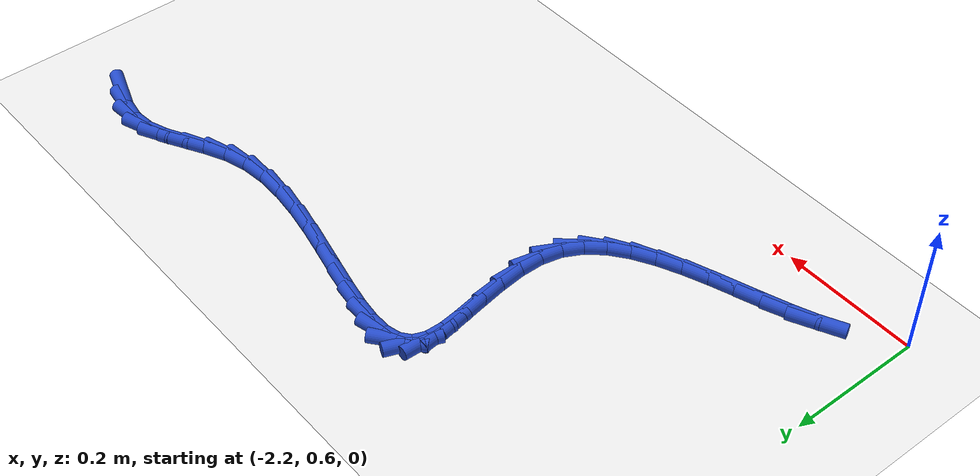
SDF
<sdf version="1.6">
 <world name="default">
  <model name="ground_plane">
   <static>1</static>
   <link name="link">
    <collision name="collision">
     <geometry><plane><normal>0 0 1</normal><size>100 100</size></plane></geometry>
     <surface><friction><ode><mu>100</mu><mu2>50</mu2></ode></friction></surface>
    </collision>
    <visual name="visual">
     <cast_shadows>0</cast_shadows>
     <geometry><plane><normal>0 0 1</normal><size>100 100</size></plane></geometry>
     <material>
      <script><uri>file://media/materials/scripts/gazebo.material</uri><name>Gazebo/WhiteGlow</name></script>
     </material>
    </visual>
   </link>
  </model>
  <model name="line">
   <link name="link_60">
    <pose>-1.1661612133072312 1.1050221997627931 0.01 0 1.57 -0.3402627890461633</pose>
    <collision name="collision">
     <geometry><cylinder><radius>0.01</radius><length>0.08</length></cylinder></geometry>
    </collision>
    <visual name="visual">
     <material>
      <script><name>Gazebo/Blue</name><uri>file://media/materials/scripts/gazebo.material</uri></script>
     </material>
     <geometry><cylinder><radius>0.01</radius><length>0.08</length></cylinder></geometry>
    </visual>
   </link>
   <link name="link_61">
    <pose>-1.197531414126988 1.1161282728099007 0.01 0 1.57 -0.15765836590429164</pose>
    <collision name="collision">
     <geometry><cylinder><radius>0.01</radius><length>0.08</length></cylinder></geometry>
    </collision>
    <visual name="visual">
     <material>
      <script><name>Gazebo/Blue</name><uri>file://media/materials/scripts/gazebo.material</uri></script>
     </material>
     <geometry><cylinder><radius>0.01</radius><length>0.08</length></cylinder></geometry>
    </visual>
   </link>
   <link name="link_62">
    <pose>-1.2279665543143623 1.1209667827926577 0.01 0 1.57 0.10263413177115663</pose>
    <collision name="collision">
     <geometry><cylinder><radius>0.01</radius><length>0.08</length></cylinder></geometry>
    </collision>
    <visual name="visual">
     <material>
      <script><name>Gazebo/Blue</name><uri>file://media/materials/scripts/gazebo.material</uri></script>
     </material>
     <geometry><cylinder><radius>0.01</radius><length>0.08</length></cylinder></geometry>
    </visual>
   </link>
   <link name="link_63">
    <pose>-1.2571983899645414 1.117956019732429 0.01 0 1.57 0.35035542812867</pose>
    <collision name="collision">
     <geometry><cylinder><radius>0.01</radius><length>0.08</length></cylinder></geometry>
    </collision>
    <visual name="visual">
     <material>
      <script><name>Gazebo/Blue</name><uri>file://media/materials/scripts/gazebo.material</uri></script>
     </material>
     <geometry><cylinder><radius>0.01</radius><length>0.08</length></cylinder></geometry>
    </visual>
   </link>
   <link name="link_64">
    <pose>-1.285509394476977 1.1076102915710802 0.01 0 1.57 0.48161283132658783</pose>
    <collision name="collision">
     <geometry><cylinder><radius>0.01</radius><length>0.08</length></cylinder></geometry>
    </collision>
    <visual name="visual">
     <material>
      <script><name>Gazebo/Blue</name><uri>file://media/materials/scripts/gazebo.material</uri></script>
     </material>
     <geometry><cylinder><radius>0.01</radius><length>0.08</length></cylinder></geometry>
    </visual>
   </link>
   <link name="link_65">
    <pose>-1.3138064704727535 1.092820470103618 0.01 0 1.57 0.506559227448487</pose>
    <collision name="collision">
     <geometry><cylinder><radius>0.01</radius><length>0.08</length></cylinder></geometry>
    </collision>
    <visual name="visual">
     <material>
      <script><name>Gazebo/Blue</name><uri>file://media/materials/scripts/gazebo.material</uri></script>
     </material>
     <geometry><cylinder><radius>0.01</radius><length>0.08</length></cylinder></geometry>
    </visual>
   </link>
   <link name="link_66">
    <pose>-1.3430302165420716 1.0766056732407399 0.01 0 1.57 0.43956839144852444</pose>
    <collision name="collision">
     <geometry><cylinder><radius>0.01</radius><length>0.08</length></cylinder></geometry>
    </collision>
    <visual name="visual">
     <material>
      <script><name>Gazebo/Blue</name><uri>file://media/materials/scripts/gazebo.material</uri></script>
     </material>
     <geometry><cylinder><radius>0.01</radius><length>0.08</length></cylinder></geometry>
    </visual>
   </link>
   <link name="link_67">
    <pose>-1.3741212312751294 1.061985018893143 0.01 0 1.57 0.28851569758027024</pose>
    <collision name="collision">
     <geometry><cylinder><radius>0.01</radius><length>0.08</length></cylinder></geometry>
    </collision>
    <visual name="visual">
     <material>
      <script><name>Gazebo/Blue</name><uri>file://media/materials/scripts/gazebo.material</uri></script>
     </material>
     <geometry><cylinder><radius>0.01</radius><length>0.08</length></cylinder></geometry>
    </visual>
   </link>
   <link name="link_68">
    <pose>-1.4079995198568007 1.0519300437578145 0.01 0 1.57 0.1149981122758367</pose>
    <collision name="collision">
     <geometry><cylinder><radius>0.01</radius><length>0.08</length></cylinder></geometry>
    </collision>
    <visual name="visual">
     <material>
      <script><name>Gazebo/Blue</name><uri>file://media/materials/scripts/gazebo.material</uri></script>
     </material>
     <geometry><cylinder><radius>0.01</radius><length>0.08</length></cylinder></geometry>
    </visual>
   </link>
   <link name="link_69">
    <pose>-1.4448333753994742 1.047675448287256 0.01 0 1.57 -0.015059358832556541</pose>
    <collision name="collision">
     <geometry><cylinder><radius>0.01</radius><length>0.08</length></cylinder></geometry>
    </collision>
    <visual name="visual">
     <material>
      <script><name>Gazebo/Blue</name><uri>file://media/materials/scripts/gazebo.material</uri></script>
     </material>
     <geometry><cylinder><radius>0.01</radius><length>0.08</length></cylinder></geometry>
    </visual>
   </link>
   <link name="link_70">
    <pose>-1.4838419505008476 1.0482629368289826 0.01 0 1.57 -0.1069459673614197</pose>
    <collision name="collision">
     <geometry><cylinder><radius>0.01</radius><length>0.08</length></cylinder></geometry>
    </collision>
    <visual name="visual">
     <material>
      <script><name>Gazebo/Blue</name><uri>file://media/materials/scripts/gazebo.material</uri></script>
     </material>
     <geometry><cylinder><radius>0.01</radius><length>0.08</length></cylinder></geometry>
    </visual>
   </link>
   <link name="link_71">
    <pose>-1.5241836442872767 1.0525938423903864 0.01 0 1.57 -0.16919954219452152</pose>
    <collision name="collision">
     <geometry><cylinder><radius>0.01</radius><length>0.08</length></cylinder></geometry>
    </collision>
    <visual name="visual">
     <material>
      <script><name>Gazebo/Blue</name><uri>file://media/materials/scripts/gazebo.material</uri></script>
     </material>
     <geometry><cylinder><radius>0.01</radius><length>0.08</length></cylinder></geometry>
    </visual>
   </link>
   <link name="link_72">
    <pose>-1.5650168558851192 1.0595694979788597 0.01 0 1.57 -0.20747197507004378</pose>
    <collision name="collision">
     <geometry><cylinder><radius>0.01</radius><length>0.08</length></cylinder></geometry>
    </collision>
    <visual name="visual">
     <material>
      <script><name>Gazebo/Blue</name><uri>file://media/materials/scripts/gazebo.material</uri></script>
     </material>
     <geometry><cylinder><radius>0.01</radius><length>0.08</length></cylinder></geometry>
    </visual>
   </link>
   <link name="link_73">
    <pose>-1.6054999844207316 1.0680912366017934 0.01 0 1.57 -0.22442702422163446</pose>
    <collision name="collision">
     <geometry><cylinder><radius>0.01</radius><length>0.08</length></cylinder></geometry>
    </collision>
    <visual name="visual">
     <material>
      <script><name>Gazebo/Blue</name><uri>file://media/materials/scripts/gazebo.material</uri></script>
     </material>
     <geometry><cylinder><radius>0.01</radius><length>0.08</length></cylinder></geometry>
    </visual>
   </link>
   <link name="link_74">
    <pose>-1.6447914290204715 1.0770603912665795 0.01 0 1.57 -0.21964864377895948</pose>
    <collision name="collision">
     <geometry><cylinder><radius>0.01</radius><length>0.08</length></cylinder></geometry>
    </collision>
    <visual name="visual">
     <material>
      <script><name>Gazebo/Blue</name><uri>file://media/materials/scripts/gazebo.material</uri></script>
     </material>
     <geometry><cylinder><radius>0.01</radius><length>0.08</length></cylinder></geometry>
    </visual>
   </link>
   <link name="link_75">
    <pose>-1.6820495888106946 1.0853782949806097 0.01 0 1.57 -0.188748825636155</pose>
    <collision name="collision">
     <geometry><cylinder><radius>0.01</radius><length>0.08</length></cylinder></geometry>
    </collision>
    <visual name="visual">
     <material>
      <script><name>Gazebo/Blue</name><uri>file://media/materials/scripts/gazebo.material</uri></script>
     </material>
     <geometry><cylinder><radius>0.01</radius><length>0.08</length></cylinder></geometry>
    </visual>
   </link>
   <link name="link_76">
    <pose>-1.7164328629177577 1.0919462807512754 0.01 0 1.57 -0.1206948329132145</pose>
    <collision name="collision">
     <geometry><cylinder><radius>0.01</radius><length>0.08</length></cylinder></geometry>
    </collision>
    <visual name="visual">
     <material>
      <script><name>Gazebo/Blue</name><uri>file://media/materials/scripts/gazebo.material</uri></script>
     </material>
     <geometry><cylinder><radius>0.01</radius><length>0.08</length></cylinder></geometry>
    </visual>
   </link>
   <link name="link_77">
    <pose>-1.7470996504680192 1.0956656815859689 0.01 0 1.57 0.00872679638063249</pose>
    <collision name="collision">
     <geometry><cylinder><radius>0.01</radius><length>0.08</length></cylinder></geometry>
    </collision>
    <visual name="visual">
     <material>
      <script><name>Gazebo/Blue</name><uri>file://media/materials/scripts/gazebo.material</uri></script>
     </material>
     <geometry><cylinder><radius>0.01</radius><length>0.08</length></cylinder></geometry>
    </visual>
   </link>
   <link name="link_78">
    <pose>-1.7732083505878338 1.0954378304920809 0.01 0 1.57 0.24936030623793817</pose>
    <collision name="collision">
     <geometry><cylinder><radius>0.01</radius><length>0.08</length></cylinder></geometry>
    </collision>
    <visual name="visual">
     <material>
      <script><name>Gazebo/Blue</name><uri>file://media/materials/scripts/gazebo.material</uri></script>
     </material>
     <geometry><cylinder><radius>0.01</radius><length>0.08</length></cylinder></geometry>
    </visual>
   </link>
   <link name="link_79">
    <pose>-1.7939173624035605 1.0901640604770044 0.01 0 1.57 0.6681390767789892</pose>
    <collision name="collision">
     <geometry><cylinder><radius>0.01</radius><length>0.08</length></cylinder></geometry>
    </collision>
    <visual name="visual">
     <material>
      <script><name>Gazebo/Blue</name><uri>file://media/materials/scripts/gazebo.material</uri></script>
     </material>
     <geometry><cylinder><radius>0.01</radius><length>0.08</length></cylinder></geometry>
    </visual>
   </link>
   <link name="link_80">
    <pose>-1.808385085041555 1.0787457045481303 0.01 0 1.57 1.1915108120711917</pose>
    <collision name="collision">
     <geometry><cylinder><radius>0.01</radius><length>0.08</length></cylinder></geometry>
    </collision>
    <visual name="visual">
     <material>
      <script><name>Gazebo/Blue</name><uri>file://media/materials/scripts/gazebo.material</uri></script>
     </material>
     <geometry><cylinder><radius>0.01</radius><length>0.08</length></cylinder></geometry>
    </visual>
   </link>
   <link name="link_81">
    <pose>-1.815808707168012 1.0601207396804573 0.01 0 1.57 1.5363126488230165</pose>
    <collision name="collision">
     <geometry><cylinder><radius>0.01</radius><length>0.08</length></cylinder></geometry>
    </collision>
    <visual name="visual">
     <material>
      <script><name>Gazebo/Blue</name><uri>file://media/materials/scripts/gazebo.material</uri></script>
     </material>
     <geometry><cylinder><radius>0.01</radius><length>0.08</length></cylinder></geometry>
    </visual>
   </link>
   <link name="link_82">
    <pose>-1.8166938251167422 1.034463178346942 0.01 0 1.57 -1.4566506864139475</pose>
    <collision name="collision">
     <geometry><cylinder><radius>0.01</radius><length>0.08</length></cylinder></geometry>
    </collision>
    <visual name="visual">
     <material>
      <script><name>Gazebo/Blue</name><uri>file://media/materials/scripts/gazebo.material</uri></script>
     </material>
     <geometry><cylinder><radius>0.01</radius><length>0.08</length></cylinder></geometry>
    </visual>
   </link>
   <link name="link_83">
    <pose>-1.8131385145156196 1.0034514272441006 0.01 0 1.57 -1.4046557177342809</pose>
    <collision name="collision">
     <geometry><cylinder><radius>0.01</radius><length>0.08</length></cylinder></geometry>
    </collision>
    <visual name="visual">
     <material>
      <script><name>Gazebo/Blue</name><uri>file://media/materials/scripts/gazebo.material</uri></script>
     </material>
     <geometry><cylinder><radius>0.01</radius><length>0.08</length></cylinder></geometry>
    </visual>
   </link>
   <link name="link_84">
    <pose>-1.8073371432951784 0.9688548591390522 0.01 0 1.57 -1.411414343905852</pose>
    <collision name="collision">
     <geometry><cylinder><radius>0.01</radius><length>0.08</length></cylinder></geometry>
    </collision>
    <visual name="visual">
     <material>
      <script><name>Gazebo/Blue</name><uri>file://media/materials/scripts/gazebo.material</uri></script>
     </material>
     <geometry><cylinder><radius>0.01</radius><length>0.08</length></cylinder></geometry>
    </visual>
   </link>
   <link name="link_85">
    <pose>-1.801484079385951 0.9324428467989141 0.01 0 1.57 -1.4693741646954077</pose>
    <collision name="collision">
     <geometry><cylinder><radius>0.01</radius><length>0.08</length></cylinder></geometry>
    </collision>
    <visual name="visual">
     <material>
      <script><name>Gazebo/Blue</name><uri>file://media/materials/scripts/gazebo.material</uri></script>
     </material>
     <geometry><cylinder><radius>0.01</radius><length>0.08</length></cylinder></geometry>
    </visual>
   </link>
   <link name="link_86">
    <pose>-1.7977736907184731 0.8959847629908058 0.01 0 1.57 1.552757160157416</pose>
    <collision name="collision">
     <geometry><cylinder><radius>0.01</radius><length>0.08</length></cylinder></geometry>
    </collision>
    <visual name="visual">
     <material>
      <script><name>Gazebo/Blue</name><uri>file://media/materials/scripts/gazebo.material</uri></script>
     </material>
     <geometry><cylinder><radius>0.01</radius><length>0.08</length></cylinder></geometry>
    </visual>
   </link>
   <link name="link_87">
    <pose>-1.798400345223278 0.8612499804818452 0.01 0 1.57 1.3465627687297979</pose>
    <collision name="collision">
     <geometry><cylinder><radius>0.01</radius><length>0.08</length></cylinder></geometry>
    </collision>
    <visual name="visual">
     <material>
      <script><name>Gazebo/Blue</name><uri>file://media/materials/scripts/gazebo.material</uri></script>
     </material>
     <geometry><cylinder><radius>0.01</radius><length>0.08</length></cylinder></geometry>
    </visual>
   </link>
   <link name="link_88">
    <pose>-1.8055302290130575 0.8299880102878057 0.01 0 1.57 1.077619597262096</pose>
    <collision name="collision">
     <geometry><cylinder><radius>0.01</radius><length>0.08</length></cylinder></geometry>
    </collision>
    <visual name="visual">
     <material>
      <script><name>Gazebo/Blue</name><uri>file://media/materials/scripts/gazebo.material</uri></script>
     </material>
     <geometry><cylinder><radius>0.01</radius><length>0.08</length></cylinder></geometry>
    </visual>
   </link>
   <link name="link_89">
    <pose>-1.8200214144070368 0.8030264416718508 0.01 0 1.57 0.8364624396245434</pose>
    <collision name="collision">
     <geometry><cylinder><radius>0.01</radius><length>0.08</length></cylinder></geometry>
    </collision>
    <visual name="visual">
     <material>
      <script><name>Gazebo/Blue</name><uri>file://media/materials/scripts/gazebo.material</uri></script>
     </material>
     <geometry><cylinder><radius>0.01</radius><length>0.08</length></cylinder></geometry>
    </visual>
   </link>
   <link name="link_90">
    <pose>-1.8408983513571147 0.7799005785050358 0.01 0 1.57 0.6493220028345495</pose>
    <collision name="collision">
     <geometry><cylinder><radius>0.01</radius><length>0.08</length></cylinder></geometry>
    </collision>
    <visual name="visual">
     <material>
      <script><name>Gazebo/Blue</name><uri>file://media/materials/scripts/gazebo.material</uri></script>
     </material>
     <geometry><cylinder><radius>0.01</radius><length>0.08</length></cylinder></geometry>
    </visual>
   </link>
   <link name="link_91">
    <pose>-1.8670484343479166 0.7600491318258795 0.01 0 1.57 0.5146070128000414</pose>
    <collision name="collision">
     <geometry><cylinder><radius>0.01</radius><length>0.08</length></cylinder></geometry>
    </collision>
    <visual name="visual">
     <material>
      <script><name>Gazebo/Blue</name><uri>file://media/materials/scripts/gazebo.material</uri></script>
     </material>
     <geometry><cylinder><radius>0.01</radius><length>0.08</length></cylinder></geometry>
    </visual>
   </link>
   <link name="link_92">
    <pose>-1.8973590578640687 0.7429108126728989 0.01 0 1.57 0.4222337463207874</pose>
    <collision name="collision">
     <geometry><cylinder><radius>0.01</radius><length>0.08</length></cylinder></geometry>
    </collision>
    <visual name="visual">
     <material>
      <script><name>Gazebo/Blue</name><uri>file://media/materials/scripts/gazebo.material</uri></script>
     </material>
     <geometry><cylinder><radius>0.01</radius><length>0.08</length></cylinder></geometry>
    </visual>
   </link>
   <link name="link_93">
    <pose>-1.9307176163901962 0.7279243320846128 0.01 0 1.57 0.36275709491214153</pose>
    <collision name="collision">
     <geometry><cylinder><radius>0.01</radius><length>0.08</length></cylinder></geometry>
    </collision>
    <visual name="visual">
     <material>
      <script><name>Gazebo/Blue</name><uri>file://media/materials/scripts/gazebo.material</uri></script>
     </material>
     <geometry><cylinder><radius>0.01</radius><length>0.08</length></cylinder></geometry>
    </visual>
   </link>
   <link name="link_94">
    <pose>-1.966011504410926 0.714528401099539 0.01 0 1.57 0.3298967251809626</pose>
    <collision name="collision">
     <geometry><cylinder><radius>0.01</radius><length>0.08</length></cylinder></geometry>
    </collision>
    <visual name="visual">
     <material>
      <script><name>Gazebo/Blue</name><uri>file://media/materials/scripts/gazebo.material</uri></script>
     </material>
     <geometry><cylinder><radius>0.01</radius><length>0.08</length></cylinder></geometry>
    </visual>
   </link>
   <link name="link_95">
    <pose>-2.0021281164108835 0.7021617307561954 0.01 0 1.57 0.32065627028727683</pose>
    <collision name="collision">
     <geometry><cylinder><radius>0.01</radius><length>0.08</length></cylinder></geometry>
    </collision>
    <visual name="visual">
     <material>
      <script><name>Gazebo/Blue</name><uri>file://media/materials/scripts/gazebo.material</uri></script>
     </material>
     <geometry><cylinder><radius>0.01</radius><length>0.08</length></cylinder></geometry>
    </visual>
   </link>
   <link name="link_96">
    <pose>-2.037954846874694 0.6902630320930997 0.01 0 1.57 0.33521269895352146</pose>
    <collision name="collision">
     <geometry><cylinder><radius>0.01</radius><length>0.08</length></cylinder></geometry>
    </collision>
    <visual name="visual">
     <material>
      <script><name>Gazebo/Blue</name><uri>file://media/materials/scripts/gazebo.material</uri></script>
     </material>
     <geometry><cylinder><radius>0.01</radius><length>0.08</length></cylinder></geometry>
    </visual>
   </link>
   <link name="link_97">
    <pose>-2.0723790902869843 0.6782710161487704 0.01 0 1.57 0.37734043916184085</pose>
    <collision name="collision">
     <geometry><cylinder><radius>0.01</radius><length>0.08</length></cylinder></geometry>
    </collision>
    <visual name="visual">
     <material>
      <script><name>Gazebo/Blue</name><uri>file://media/materials/scripts/gazebo.material</uri></script>
     </material>
     <geometry><cylinder><radius>0.01</radius><length>0.08</length></cylinder></geometry>
    </visual>
   </link>
   <link name="link_98">
    <pose>-2.104288241132379 0.6656243939617252 0.01 0 1.57 0.4557469620426859</pose>
    <collision name="collision">
     <geometry><cylinder><radius>0.01</radius><length>0.08</length></cylinder></geometry>
    </collision>
    <visual name="visual">
     <material>
      <script><name>Gazebo/Blue</name><uri>file://media/materials/scripts/gazebo.material</uri></script>
     </material>
     <geometry><cylinder><radius>0.01</radius><length>0.08</length></cylinder></geometry>
    </visual>
   </link>
  </model>
 </world>
</sdf>
